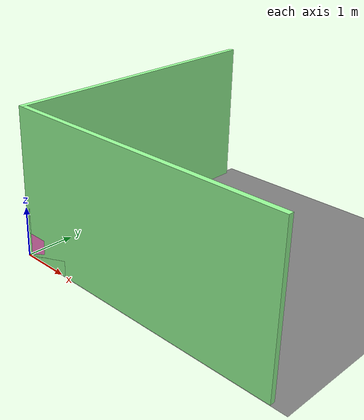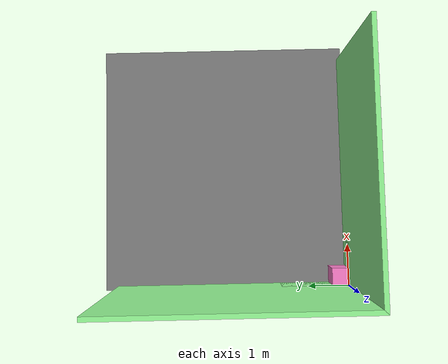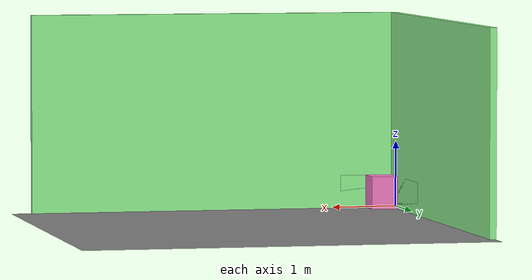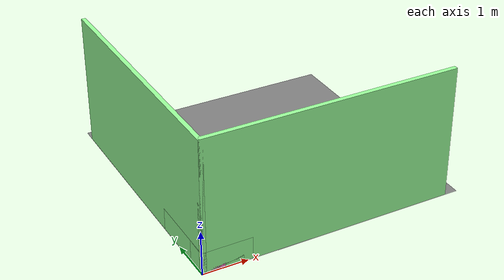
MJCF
<?xml version="1.0" encoding="utf-8"?>
<mujoco>
	<compiler angle="radian" coordinate="local" meshdir="/rds/general/user/tla19/home/FYP/MAax/assets/stls" texturedir="/rds/general/user/tla19/home/FYP/MAax/assets/textures" autolimits="true"></compiler>
	<option timestep="0.005">
		<flag warmstart="enable"></flag>
	</option>
	<worldbody>
		<geom name="floor0" pos="3 3 0" size="3 3 1" type="plane" condim="3"></geom>
		<body name="floor0" pos="3 3 0"></body>
		<body name="wall0" pos="0.05 2.85 1.5">
			<joint name="wall0_slide0" axis="1 0 0" type="slide" damping="0.01" pos="0 0 0" limited="auto" range="-1.0 1.0"></joint>
			<joint name="wall0_slide1" axis="0 1 0" type="slide" damping="0.01" pos="0 0 0" limited="auto" range="-1.0 1.0"></joint>
			<geom size="0.05 2.85 1.5" type="box" condim="3" name="wall0" rgba="0.6 1 0.6 1" group="1" mass="10" friction="0.01"></geom>
		</body>
		<body name="wall1" pos="2.85 0.05 1.5">
			<joint name="wall1_slide0" axis="1 0 0" type="slide" damping="0.01" pos="0 0 0" limited="auto" range="-1.0 1.0"></joint>
			<joint name="wall1_slide1" axis="0 1 0" type="slide" damping="0.01" pos="0 0 0" limited="auto" range="-1.0 1.0"></joint>
			<geom size="2.85 0.05 1.5" type="box" condim="3" name="wall1" rgba="0.6 1 0.6 1" group="1" mass="10" friction="0.01"></geom>
		</body>
		<body name="wall2" pos="0.05 2.85 1.5">
			<joint name="wall2_slide0" axis="1 0 0" type="slide" damping="0.01" pos="0 0 0" limited="auto" range="-1.0 1.0"></joint>
			<joint name="wall2_slide1" axis="0 1 0" type="slide" damping="0.01" pos="0 0 0" limited="auto" range="-1.0 1.0"></joint>
			<geom size="0.05 2.85 1.5" type="box" condim="3" name="wall2" rgba="0.6 1 0.6 1" group="1" mass="10" friction="0.01"></geom>
		</body>
		<body name="wall3" pos="2.85 0.05 1.5">
			<joint name="wall3_slide0" axis="1 0 0" type="slide" damping="0.01" pos="0 0 0" limited="auto" range="-1.0 1.0"></joint>
			<joint name="wall3_slide1" axis="0 1 0" type="slide" damping="0.01" pos="0 0 0" limited="auto" range="-1.0 1.0"></joint>
			<geom size="2.85 0.05 1.5" type="box" condim="3" name="wall3" rgba="0.6 1 0.6 1" group="1" mass="10" friction="0.01"></geom>
		</body>
		<body name="wall4" pos="0.05 0.85 0.25">
			<joint name="wall4_slide0" axis="1 0 0" type="slide" damping="0.01" pos="0 0 0" limited="auto" range="-1.0 1.0"></joint>
			<joint name="wall4_slide1" axis="0 1 0" type="slide" damping="0.01" pos="0 0 0" limited="auto" range="-1.0 1.0"></joint>
			<geom size="0.05 0.85 0.25" type="box" condim="3" name="wall4" rgba="0.6 1 0.6 1" group="1" mass="10" friction="0.01"></geom>
		</body>
		<body name="wall5" pos="0.05 0.25 0.25">
			<joint name="wall5_slide0" axis="1 0 0" type="slide" damping="0.01" pos="0 0 0" limited="auto" range="-1.0 1.0"></joint>
			<joint name="wall5_slide1" axis="0 1 0" type="slide" damping="0.01" pos="0 0 0" limited="auto" range="-1.0 1.0"></joint>
			<geom size="0.05 0.25 0.25" type="box" condim="3" name="wall5" rgba="0.6 1 0.6 1" group="1" mass="10" friction="0.01"></geom>
		</body>
		<body name="wall6" pos="0.55 0.05 0.25">
			<joint name="wall6_slide0" axis="1 0 0" type="slide" damping="0.01" pos="0 0 0" limited="auto" range="-1.0 1.0"></joint>
			<joint name="wall6_slide1" axis="0 1 0" type="slide" damping="0.01" pos="0 0 0" limited="auto" range="-1.0 1.0"></joint>
			<geom size="0.55 0.05 0.25" type="box" condim="3" name="wall6" rgba="0.6 1 0.6 1" group="1" mass="10" friction="0.01"></geom>
		</body>
		<body name="wall7" pos="0.45 0.05 0.25">
			<joint name="wall7_slide0" axis="1 0 0" type="slide" damping="0.01" pos="0 0 0" limited="auto" range="-1.0 1.0"></joint>
			<joint name="wall7_slide1" axis="0 1 0" type="slide" damping="0.01" pos="0 0 0" limited="auto" range="-1.0 1.0"></joint>
			<geom size="0.45 0.05 0.25" type="box" condim="3" name="wall7" rgba="0.6 1 0.6 1" group="1" mass="10" friction="0.01"></geom>
		</body>
		<body pos="0.15 0.15 0.15" name="agent0_agent0">
			<joint axis="1 0 0" damping="0.01" name="agent0_slide0" pos="0 0 0" type="slide" limited="auto" range="-100 100"></joint>
			<joint axis="0 1 0" damping="0.01" name="agent0_slide1" pos="0 0 0" type="slide" limited="auto" range="-100 100"></joint>
			<joint axis="0 0 1" damping="0.01" name="agent0_hinge0" pos="0 0 0" type="hinge" limited="auto" range="-100 100"></joint>
			<geom name="agent0_agent" mass="1" pos="0 0 0" rgba="0.258824 0.921569 0.956863 1" size="0.15" type="sphere" euler="1.57 0 0" friction="0.01"></geom>
		</body>
		<body pos="0.15 0.15 0.15" name="agent1_agent1">
			<joint axis="1 0 0" damping="0.01" name="agent1_slide0" pos="0 0 0" type="slide" limited="auto" range="-100 100"></joint>
			<joint axis="0 1 0" damping="0.01" name="agent1_slide1" pos="0 0 0" type="slide" limited="auto" range="-100 100"></joint>
			<joint axis="0 0 1" damping="0.01" name="agent1_hinge0" pos="0 0 0" type="hinge" limited="auto" range="-100 100"></joint>
			<geom name="agent1_agent" mass="1" pos="0 0 0" rgba="0.258824 0.921569 0.956863 1" size="0.15" type="sphere" euler="1.57 0 0" friction="0.01"></geom>
		</body>
		<body name="moveable-box0" pos="0.25 0.25 0.25">
			<joint name="moveable-box0_slide0" axis="1 0 0" type="slide" damping="0.01" pos="0 0 0" limited="auto"></joint>
			<joint name="moveable-box0_slide1" axis="0 1 0" type="slide" damping="0.01" pos="0 0 0" limited="auto"></joint>
			<joint name="moveable-box0_slide2" axis="0 0 1" type="slide" damping="0.01" pos="0 0 0" limited="auto"></joint>
			<geom size="0.25 0.25 0.25" type="box" condim="3" name="moveable-box0" rgba="1 0.5 0.8 1" mass="1" friction="0.2"></geom>
		</body>
		<body name="moveable-box1" pos="0.25 0.25 0.25">
			<joint name="moveable-box1_slide0" axis="1 0 0" type="slide" damping="0.01" pos="0 0 0" limited="auto"></joint>
			<joint name="moveable-box1_slide1" axis="0 1 0" type="slide" damping="0.01" pos="0 0 0" limited="auto"></joint>
			<joint name="moveable-box1_slide2" axis="0 0 1" type="slide" damping="0.01" pos="0 0 0" limited="auto"></joint>
			<geom size="0.25 0.25 0.25" type="box" condim="3" name="moveable-box1" rgba="1 0.5 0.8 1" mass="1" friction="0.2"></geom>
		</body>
		<body name="moveable-box2" pos="0.25 0.25 0.25">
			<joint name="moveable-box2_slide0" axis="1 0 0" type="slide" damping="0.01" pos="0 0 0" limited="auto"></joint>
			<joint name="moveable-box2_slide1" axis="0 1 0" type="slide" damping="0.01" pos="0 0 0" limited="auto"></joint>
			<joint name="moveable-box2_slide2" axis="0 0 1" type="slide" damping="0.01" pos="0 0 0" limited="auto"></joint>
			<geom size="0.25 0.25 0.25" type="box" condim="3" name="moveable-box2" rgba="1 0.5 0.8 1" mass="1" friction="0.2"></geom>
		</body>
		<body name="moveable-box3" pos="0.25 0.25 0.25">
			<joint name="moveable-box3_slide0" axis="1 0 0" type="slide" damping="0.01" pos="0 0 0" limited="auto"></joint>
			<joint name="moveable-box3_slide1" axis="0 1 0" type="slide" damping="0.01" pos="0 0 0" limited="auto"></joint>
			<joint name="moveable-box3_slide2" axis="0 0 1" type="slide" damping="0.01" pos="0 0 0" limited="auto"></joint>
			<geom size="0.25 0.25 0.25" type="box" condim="3" name="moveable-box3" rgba="1 0.5 0.8 1" mass="1" friction="0.2"></geom>
		</body>
		<body name="moveable-box4" pos="0.25 0.25 0.25">
			<joint name="moveable-box4_slide0" axis="1 0 0" type="slide" damping="0.01" pos="0 0 0" limited="auto"></joint>
			<joint name="moveable-box4_slide1" axis="0 1 0" type="slide" damping="0.01" pos="0 0 0" limited="auto"></joint>
			<joint name="moveable-box4_slide2" axis="0 0 1" type="slide" damping="0.01" pos="0 0 0" limited="auto"></joint>
			<geom size="0.25 0.25 0.25" type="box" condim="3" name="moveable-box4" rgba="1 0.5 0.8 1" mass="1" friction="0.2"></geom>
		</body>
		<body name="moveable-box5" pos="0.25 0.25 0.25">
			<joint name="moveable-box5_slide0" axis="1 0 0" type="slide" damping="0.01" pos="0 0 0" limited="auto"></joint>
			<joint name="moveable-box5_slide1" axis="0 1 0" type="slide" damping="0.01" pos="0 0 0" limited="auto"></joint>
			<joint name="moveable-box5_slide2" axis="0 0 1" type="slide" damping="0.01" pos="0 0 0" limited="auto"></joint>
			<geom size="0.25 0.25 0.25" type="box" condim="3" name="moveable-box5" rgba="1 0.5 0.8 1" mass="1" friction="0.2"></geom>
		</body>
		<body name="moveable-box6" pos="0.25 0.25 0.25">
			<joint name="moveable-box6_slide0" axis="1 0 0" type="slide" damping="0.01" pos="0 0 0" limited="auto"></joint>
			<joint name="moveable-box6_slide1" axis="0 1 0" type="slide" damping="0.01" pos="0 0 0" limited="auto"></joint>
			<joint name="moveable-box6_slide2" axis="0 0 1" type="slide" damping="0.01" pos="0 0 0" limited="auto"></joint>
			<geom size="0.25 0.25 0.25" type="box" condim="3" name="moveable-box6" rgba="1 0.5 0.8 1" mass="1" friction="0.2"></geom>
		</body>
		<body name="moveable-box7" pos="0.25 0.25 0.25">
			<joint name="moveable-box7_slide0" axis="1 0 0" type="slide" damping="0.01" pos="0 0 0" limited="auto"></joint>
			<joint name="moveable-box7_slide1" axis="0 1 0" type="slide" damping="0.01" pos="0 0 0" limited="auto"></joint>
			<joint name="moveable-box7_slide2" axis="0 0 1" type="slide" damping="0.01" pos="0 0 0" limited="auto"></joint>
			<geom size="0.25 0.25 0.25" type="box" condim="3" name="moveable-box7" rgba="1 0.5 0.8 1" mass="1" friction="0.2"></geom>
		</body>
		<body name="moveable-box8" pos="0.25 0.25 0.25">
			<joint name="moveable-box8_slide0" axis="1 0 0" type="slide" damping="0.01" pos="0 0 0" limited="auto"></joint>
			<joint name="moveable-box8_slide1" axis="0 1 0" type="slide" damping="0.01" pos="0 0 0" limited="auto"></joint>
			<joint name="moveable-box8_slide2" axis="0 0 1" type="slide" damping="0.01" pos="0 0 0" limited="auto"></joint>
			<geom size="0.25 0.25 0.25" type="box" condim="3" name="moveable-box8" rgba="1 0.5 0.8 1" mass="1" friction="0.2"></geom>
		</body>
	</worldbody>
	<actuator>
		<motor gear="100" joint="agent0_slide0"></motor>
		<motor gear="100" joint="agent0_slide1"></motor>
		<motor gear="100" joint="agent0_hinge0"></motor>
		<motor gear="100" joint="agent1_slide0"></motor>
		<motor gear="100" joint="agent1_slide1"></motor>
		<motor gear="100" joint="agent1_hinge0"></motor>
	</actuator>
</mujoco>
